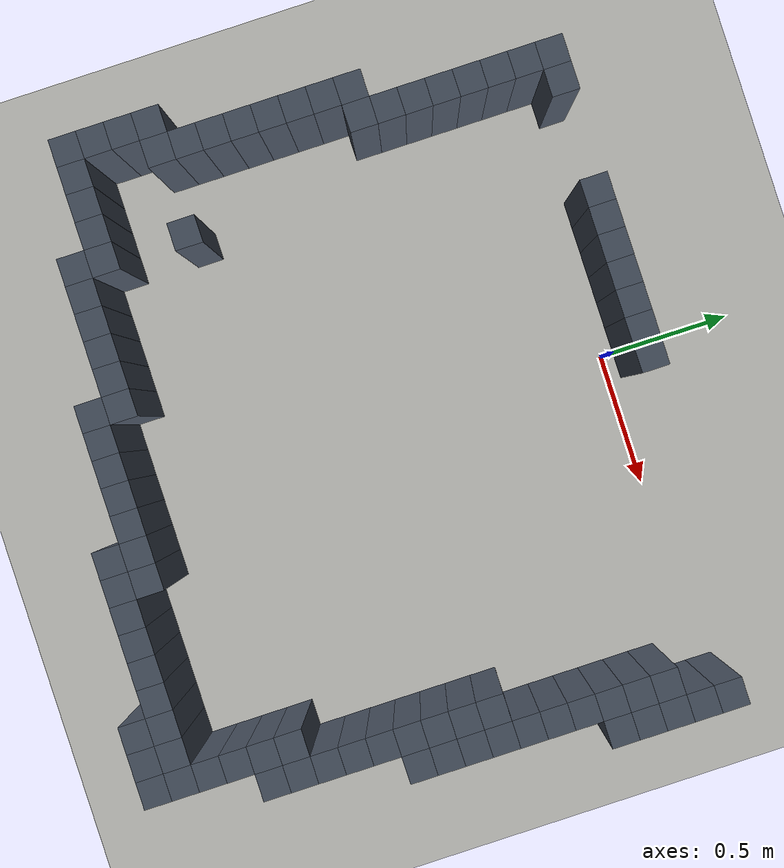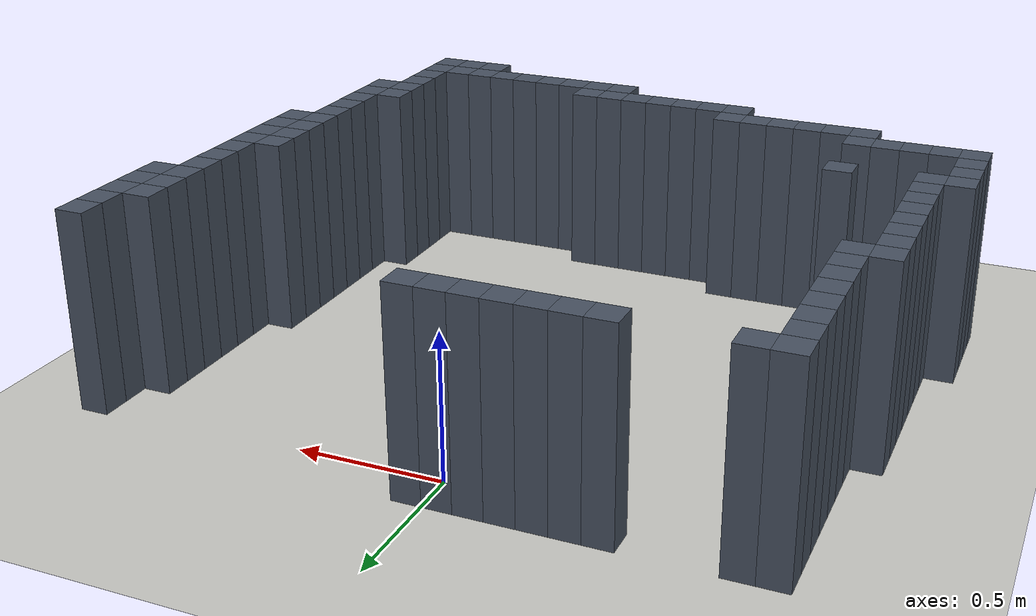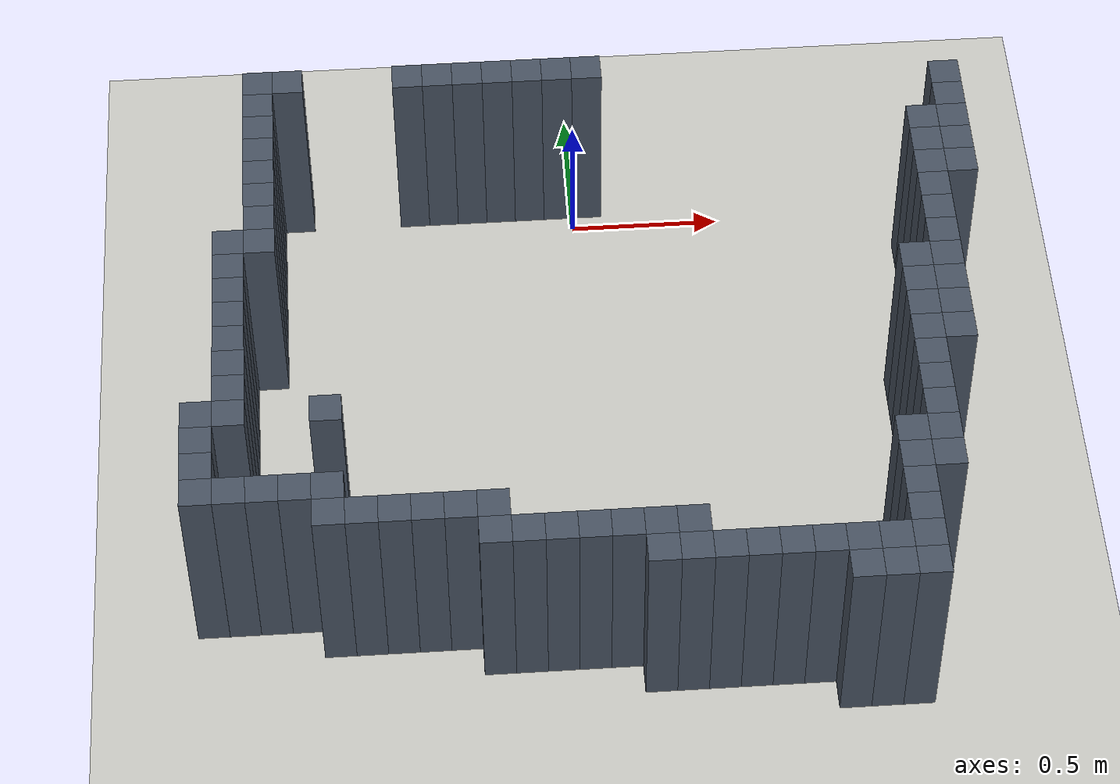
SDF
<sdf version="1.8">
 <world name="parking_passage">
  <model name="floor">
   <static>true</static>
   <link name="link">
    <collision name="collision">
     <geometry><plane><normal>0 0 1</normal><size>3.6 5.1</size></plane></geometry>
    </collision>
    <visual name="visual">
     <geometry><plane><normal>0 0 1</normal><size>3.6 5.1</size></plane></geometry>
     <material><ambient>0.78 0.78 0.76 1</ambient><diffuse>0.78 0.78 0.76 1</diffuse></material>
    </visual>
   </link>
  </model>
  <model name="map_walls">
   <static>true</static>
   <link name="wall_19_2">
    <pose>-1.050 0.100 0.350 0 0 0</pose>
    <visual name="visual">
     <geometry><box><size>0.1 0.1 0.70</size></box></geometry>
     <material><ambient>0.22 0.25 0.30 1</ambient><diffuse>0.28 0.32 0.38 1</diffuse></material>
    </visual>
    <collision name="collision"><geometry><box><size>0.1 0.1 0.70</size></box></geometry></collision>
   </link>
   <link name="wall_19_3">
    <pose>-0.950 0.100 0.350 0 0 0</pose>
    <visual name="visual">
     <geometry><box><size>0.1 0.1 0.70</size></box></geometry>
     <material><ambient>0.22 0.25 0.30 1</ambient><diffuse>0.28 0.32 0.38 1</diffuse></material>
    </visual>
    <collision name="collision"><geometry><box><size>0.1 0.1 0.70</size></box></geometry></collision>
   </link>
   <link name="wall_19_7">
    <pose>-0.550 0.100 0.350 0 0 0</pose>
    <visual name="visual">
     <geometry><box><size>0.1 0.1 0.70</size></box></geometry>
     <material><ambient>0.22 0.25 0.30 1</ambient><diffuse>0.28 0.32 0.38 1</diffuse></material>
    </visual>
    <collision name="collision"><geometry><box><size>0.1 0.1 0.70</size></box></geometry></collision>
   </link>
   <link name="wall_19_8">
    <pose>-0.450 0.100 0.350 0 0 0</pose>
    <visual name="visual">
     <geometry><box><size>0.1 0.1 0.70</size></box></geometry>
     <material><ambient>0.22 0.25 0.30 1</ambient><diffuse>0.28 0.32 0.38 1</diffuse></material>
    </visual>
    <collision name="collision"><geometry><box><size>0.1 0.1 0.70</size></box></geometry></collision>
   </link>
   <link name="wall_19_9">
    <pose>-0.350 0.100 0.350 0 0 0</pose>
    <visual name="visual">
     <geometry><box><size>0.1 0.1 0.70</size></box></geometry>
     <material><ambient>0.22 0.25 0.30 1</ambient><diffuse>0.28 0.32 0.38 1</diffuse></material>
    </visual>
    <collision name="collision"><geometry><box><size>0.1 0.1 0.70</size></box></geometry></collision>
   </link>
   <link name="wall_19_10">
    <pose>-0.250 0.100 0.350 0 0 0</pose>
    <visual name="visual">
     <geometry><box><size>0.1 0.1 0.70</size></box></geometry>
     <material><ambient>0.22 0.25 0.30 1</ambient><diffuse>0.28 0.32 0.38 1</diffuse></material>
    </visual>
    <collision name="collision"><geometry><box><size>0.1 0.1 0.70</size></box></geometry></collision>
   </link>
   <link name="wall_19_11">
    <pose>-0.150 0.100 0.350 0 0 0</pose>
    <visual name="visual">
     <geometry><box><size>0.1 0.1 0.70</size></box></geometry>
     <material><ambient>0.22 0.25 0.30 1</ambient><diffuse>0.28 0.32 0.38 1</diffuse></material>
    </visual>
    <collision name="collision"><geometry><box><size>0.1 0.1 0.70</size></box></geometry></collision>
   </link>
   <link name="wall_19_12">
    <pose>-0.050 0.100 0.350 0 0 0</pose>
    <visual name="visual">
     <geometry><box><size>0.1 0.1 0.70</size></box></geometry>
     <material><ambient>0.22 0.25 0.30 1</ambient><diffuse>0.28 0.32 0.38 1</diffuse></material>
    </visual>
    <collision name="collision"><geometry><box><size>0.1 0.1 0.70</size></box></geometry></collision>
   </link>
   <link name="wall_19_13">
    <pose>0.050 0.100 0.350 0 0 0</pose>
    <visual name="visual">
     <geometry><box><size>0.1 0.1 0.70</size></box></geometry>
     <material><ambient>0.22 0.25 0.30 1</ambient><diffuse>0.28 0.32 0.38 1</diffuse></material>
    </visual>
    <collision name="collision"><geometry><box><size>0.1 0.1 0.70</size></box></geometry></collision>
   </link>
   <link name="wall_20_2">
    <pose>-1.050 0.000 0.350 0 0 0</pose>
    <visual name="visual">
     <geometry><box><size>0.1 0.1 0.70</size></box></geometry>
     <material><ambient>0.22 0.25 0.30 1</ambient><diffuse>0.28 0.32 0.38 1</diffuse></material>
    </visual>
    <collision name="collision"><geometry><box><size>0.1 0.1 0.70</size></box></geometry></collision>
   </link>
   <link name="wall_20_25">
    <pose>1.250 0.000 0.350 0 0 0</pose>
    <visual name="visual">
     <geometry><box><size>0.1 0.1 0.70</size></box></geometry>
     <material><ambient>0.22 0.25 0.30 1</ambient><diffuse>0.28 0.32 0.38 1</diffuse></material>
    </visual>
    <collision name="collision"><geometry><box><size>0.1 0.1 0.70</size></box></geometry></collision>
   </link>
   <link name="wall_21_2">
    <pose>-1.050 -0.100 0.350 0 0 0</pose>
    <visual name="visual">
     <geometry><box><size>0.1 0.1 0.70</size></box></geometry>
     <material><ambient>0.22 0.25 0.30 1</ambient><diffuse>0.28 0.32 0.38 1</diffuse></material>
    </visual>
    <collision name="collision"><geometry><box><size>0.1 0.1 0.70</size></box></geometry></collision>
   </link>
   <link name="wall_21_25">
    <pose>1.250 -0.100 0.350 0 0 0</pose>
    <visual name="visual">
     <geometry><box><size>0.1 0.1 0.70</size></box></geometry>
     <material><ambient>0.22 0.25 0.30 1</ambient><diffuse>0.28 0.32 0.38 1</diffuse></material>
    </visual>
    <collision name="collision"><geometry><box><size>0.1 0.1 0.70</size></box></geometry></collision>
   </link>
   <link name="wall_22_2">
    <pose>-1.050 -0.200 0.350 0 0 0</pose>
    <visual name="visual">
     <geometry><box><size>0.1 0.1 0.70</size></box></geometry>
     <material><ambient>0.22 0.25 0.30 1</ambient><diffuse>0.28 0.32 0.38 1</diffuse></material>
    </visual>
    <collision name="collision"><geometry><box><size>0.1 0.1 0.70</size></box></geometry></collision>
   </link>
   <link name="wall_22_24">
    <pose>1.150 -0.200 0.350 0 0 0</pose>
    <visual name="visual">
     <geometry><box><size>0.1 0.1 0.70</size></box></geometry>
     <material><ambient>0.22 0.25 0.30 1</ambient><diffuse>0.28 0.32 0.38 1</diffuse></material>
    </visual>
    <collision name="collision"><geometry><box><size>0.1 0.1 0.70</size></box></geometry></collision>
   </link>
   <link name="wall_22_25">
    <pose>1.250 -0.200 0.350 0 0 0</pose>
    <visual name="visual">
     <geometry><box><size>0.1 0.1 0.70</size></box></geometry>
     <material><ambient>0.22 0.25 0.30 1</ambient><diffuse>0.28 0.32 0.38 1</diffuse></material>
    </visual>
    <collision name="collision"><geometry><box><size>0.1 0.1 0.70</size></box></geometry></collision>
   </link>
   <link name="wall_23_2">
    <pose>-1.050 -0.300 0.350 0 0 0</pose>
    <visual name="visual">
     <geometry><box><size>0.1 0.1 0.70</size></box></geometry>
     <material><ambient>0.22 0.25 0.30 1</ambient><diffuse>0.28 0.32 0.38 1</diffuse></material>
    </visual>
    <collision name="collision"><geometry><box><size>0.1 0.1 0.70</size></box></geometry></collision>
   </link>
   <link name="wall_23_24">
    <pose>1.150 -0.300 0.350 0 0 0</pose>
    <visual name="visual">
     <geometry><box><size>0.1 0.1 0.70</size></box></geometry>
     <material><ambient>0.22 0.25 0.30 1</ambient><diffuse>0.28 0.32 0.38 1</diffuse></material>
    </visual>
    <collision name="collision"><geometry><box><size>0.1 0.1 0.70</size></box></geometry></collision>
   </link>
   <link name="wall_23_25">
    <pose>1.250 -0.300 0.350 0 0 0</pose>
    <visual name="visual">
     <geometry><box><size>0.1 0.1 0.70</size></box></geometry>
     <material><ambient>0.22 0.25 0.30 1</ambient><diffuse>0.28 0.32 0.38 1</diffuse></material>
    </visual>
    <collision name="collision"><geometry><box><size>0.1 0.1 0.70</size></box></geometry></collision>
   </link>
   <link name="wall_24_2">
    <pose>-1.050 -0.400 0.350 0 0 0</pose>
    <visual name="visual">
     <geometry><box><size>0.1 0.1 0.70</size></box></geometry>
     <material><ambient>0.22 0.25 0.30 1</ambient><diffuse>0.28 0.32 0.38 1</diffuse></material>
    </visual>
    <collision name="collision"><geometry><box><size>0.1 0.1 0.70</size></box></geometry></collision>
   </link>
   <link name="wall_24_24">
    <pose>1.150 -0.400 0.350 0 0 0</pose>
    <visual name="visual">
     <geometry><box><size>0.1 0.1 0.70</size></box></geometry>
     <material><ambient>0.22 0.25 0.30 1</ambient><diffuse>0.28 0.32 0.38 1</diffuse></material>
    </visual>
    <collision name="collision"><geometry><box><size>0.1 0.1 0.70</size></box></geometry></collision>
   </link>
   <link name="wall_24_25">
    <pose>1.250 -0.400 0.350 0 0 0</pose>
    <visual name="visual">
     <geometry><box><size>0.1 0.1 0.70</size></box></geometry>
     <material><ambient>0.22 0.25 0.30 1</ambient><diffuse>0.28 0.32 0.38 1</diffuse></material>
    </visual>
    <collision name="collision"><geometry><box><size>0.1 0.1 0.70</size></box></geometry></collision>
   </link>
   <link name="wall_25_2">
    <pose>-1.050 -0.500 0.350 0 0 0</pose>
    <visual name="visual">
     <geometry><box><size>0.1 0.1 0.70</size></box></geometry>
     <material><ambient>0.22 0.25 0.30 1</ambient><diffuse>0.28 0.32 0.38 1</diffuse></material>
    </visual>
    <collision name="collision"><geometry><box><size>0.1 0.1 0.70</size></box></geometry></collision>
   </link>
   <link name="wall_25_24">
    <pose>1.150 -0.500 0.350 0 0 0</pose>
    <visual name="visual">
     <geometry><box><size>0.1 0.1 0.70</size></box></geometry>
     <material><ambient>0.22 0.25 0.30 1</ambient><diffuse>0.28 0.32 0.38 1</diffuse></material>
    </visual>
    <collision name="collision"><geometry><box><size>0.1 0.1 0.70</size></box></geometry></collision>
   </link>
   <link name="wall_26_1">
    <pose>-1.150 -0.600 0.350 0 0 0</pose>
    <visual name="visual">
     <geometry><box><size>0.1 0.1 0.70</size></box></geometry>
     <material><ambient>0.22 0.25 0.30 1</ambient><diffuse>0.28 0.32 0.38 1</diffuse></material>
    </visual>
    <collision name="collision"><geometry><box><size>0.1 0.1 0.70</size></box></geometry></collision>
   </link>
   <link name="wall_26_2">
    <pose>-1.050 -0.600 0.350 0 0 0</pose>
    <visual name="visual">
     <geometry><box><size>0.1 0.1 0.70</size></box></geometry>
     <material><ambient>0.22 0.25 0.30 1</ambient><diffuse>0.28 0.32 0.38 1</diffuse></material>
    </visual>
    <collision name="collision"><geometry><box><size>0.1 0.1 0.70</size></box></geometry></collision>
   </link>
   <link name="wall_26_24">
    <pose>1.150 -0.600 0.350 0 0 0</pose>
    <visual name="visual">
     <geometry><box><size>0.1 0.1 0.70</size></box></geometry>
     <material><ambient>0.22 0.25 0.30 1</ambient><diffuse>0.28 0.32 0.38 1</diffuse></material>
    </visual>
    <collision name="collision"><geometry><box><size>0.1 0.1 0.70</size></box></geometry></collision>
   </link>
   <link name="wall_27_1">
    <pose>-1.150 -0.700 0.350 0 0 0</pose>
    <visual name="visual">
     <geometry><box><size>0.1 0.1 0.70</size></box></geometry>
     <material><ambient>0.22 0.25 0.30 1</ambient><diffuse>0.28 0.32 0.38 1</diffuse></material>
    </visual>
    <collision name="collision"><geometry><box><size>0.1 0.1 0.70</size></box></geometry></collision>
   </link>
   <link name="wall_27_24">
    <pose>1.150 -0.700 0.350 0 0 0</pose>
    <visual name="visual">
     <geometry><box><size>0.1 0.1 0.70</size></box></geometry>
     <material><ambient>0.22 0.25 0.30 1</ambient><diffuse>0.28 0.32 0.38 1</diffuse></material>
    </visual>
    <collision name="collision"><geometry><box><size>0.1 0.1 0.70</size></box></geometry></collision>
   </link>
   <link name="wall_28_1">
    <pose>-1.150 -0.800 0.350 0 0 0</pose>
    <visual name="visual">
     <geometry><box><size>0.1 0.1 0.70</size></box></geometry>
     <material><ambient>0.22 0.25 0.30 1</ambient><diffuse>0.28 0.32 0.38 1</diffuse></material>
    </visual>
    <collision name="collision"><geometry><box><size>0.1 0.1 0.70</size></box></geometry></collision>
   </link>
   <link name="wall_28_23">
    <pose>1.050 -0.800 0.350 0 0 0</pose>
    <visual name="visual">
     <geometry><box><size>0.1 0.1 0.70</size></box></geometry>
     <material><ambient>0.22 0.25 0.30 1</ambient><diffuse>0.28 0.32 0.38 1</diffuse></material>
    </visual>
    <collision name="collision"><geometry><box><size>0.1 0.1 0.70</size></box></geometry></collision>
   </link>
   <link name="wall_28_24">
    <pose>1.150 -0.800 0.350 0 0 0</pose>
    <visual name="visual">
     <geometry><box><size>0.1 0.1 0.70</size></box></geometry>
     <material><ambient>0.22 0.25 0.30 1</ambient><diffuse>0.28 0.32 0.38 1</diffuse></material>
    </visual>
    <collision name="collision"><geometry><box><size>0.1 0.1 0.70</size></box></geometry></collision>
   </link>
   <link name="wall_29_1">
    <pose>-1.150 -0.900 0.350 0 0 0</pose>
    <visual name="visual">
     <geometry><box><size>0.1 0.1 0.70</size></box></geometry>
     <material><ambient>0.22 0.25 0.30 1</ambient><diffuse>0.28 0.32 0.38 1</diffuse></material>
    </visual>
    <collision name="collision"><geometry><box><size>0.1 0.1 0.70</size></box></geometry></collision>
   </link>
   <link name="wall_29_23">
    <pose>1.050 -0.900 0.350 0 0 0</pose>
    <visual name="visual">
     <geometry><box><size>0.1 0.1 0.70</size></box></geometry>
     <material><ambient>0.22 0.25 0.30 1</ambient><diffuse>0.28 0.32 0.38 1</diffuse></material>
    </visual>
    <collision name="collision"><geometry><box><size>0.1 0.1 0.70</size></box></geometry></collision>
   </link>
   <link name="wall_29_24">
    <pose>1.150 -0.900 0.350 0 0 0</pose>
    <visual name="visual">
     <geometry><box><size>0.1 0.1 0.70</size></box></geometry>
     <material><ambient>0.22 0.25 0.30 1</ambient><diffuse>0.28 0.32 0.38 1</diffuse></material>
    </visual>
    <collision name="collision"><geometry><box><size>0.1 0.1 0.70</size></box></geometry></collision>
   </link>
   <link name="wall_30_1">
    <pose>-1.150 -1.000 0.350 0 0 0</pose>
    <visual name="visual">
     <geometry><box><size>0.1 0.1 0.70</size></box></geometry>
     <material><ambient>0.22 0.25 0.30 1</ambient><diffuse>0.28 0.32 0.38 1</diffuse></material>
    </visual>
    <collision name="collision"><geometry><box><size>0.1 0.1 0.70</size></box></geometry></collision>
   </link>
   <link name="wall_30_23">
    <pose>1.050 -1.000 0.350 0 0 0</pose>
    <visual name="visual">
     <geometry><box><size>0.1 0.1 0.70</size></box></geometry>
     <material><ambient>0.22 0.25 0.30 1</ambient><diffuse>0.28 0.32 0.38 1</diffuse></material>
    </visual>
    <collision name="collision"><geometry><box><size>0.1 0.1 0.70</size></box></geometry></collision>
   </link>
   <link name="wall_30_24">
    <pose>1.150 -1.000 0.350 0 0 0</pose>
    <visual name="visual">
     <geometry><box><size>0.1 0.1 0.70</size></box></geometry>
     <material><ambient>0.22 0.25 0.30 1</ambient><diffuse>0.28 0.32 0.38 1</diffuse></material>
    </visual>
    <collision name="collision"><geometry><box><size>0.1 0.1 0.70</size></box></geometry></collision>
   </link>
   <link name="wall_31_1">
    <pose>-1.150 -1.100 0.350 0 0 0</pose>
    <visual name="visual">
     <geometry><box><size>0.1 0.1 0.70</size></box></geometry>
     <material><ambient>0.22 0.25 0.30 1</ambient><diffuse>0.28 0.32 0.38 1</diffuse></material>
    </visual>
    <collision name="collision"><geometry><box><size>0.1 0.1 0.70</size></box></geometry></collision>
   </link>
   <link name="wall_31_23">
    <pose>1.050 -1.100 0.350 0 0 0</pose>
    <visual name="visual">
     <geometry><box><size>0.1 0.1 0.70</size></box></geometry>
     <material><ambient>0.22 0.25 0.30 1</ambient><diffuse>0.28 0.32 0.38 1</diffuse></material>
    </visual>
    <collision name="collision"><geometry><box><size>0.1 0.1 0.70</size></box></geometry></collision>
   </link>
   <link name="wall_31_24">
    <pose>1.150 -1.100 0.350 0 0 0</pose>
    <visual name="visual">
     <geometry><box><size>0.1 0.1 0.70</size></box></geometry>
     <material><ambient>0.22 0.25 0.30 1</ambient><diffuse>0.28 0.32 0.38 1</diffuse></material>
    </visual>
    <collision name="collision"><geometry><box><size>0.1 0.1 0.70</size></box></geometry></collision>
   </link>
   <link name="wall_32_1">
    <pose>-1.150 -1.200 0.350 0 0 0</pose>
    <visual name="visual">
     <geometry><box><size>0.1 0.1 0.70</size></box></geometry>
     <material><ambient>0.22 0.25 0.30 1</ambient><diffuse>0.28 0.32 0.38 1</diffuse></material>
    </visual>
    <collision name="collision"><geometry><box><size>0.1 0.1 0.70</size></box></geometry></collision>
   </link>
   <link name="wall_32_23">
    <pose>1.050 -1.200 0.350 0 0 0</pose>
    <visual name="visual">
     <geometry><box><size>0.1 0.1 0.70</size></box></geometry>
     <material><ambient>0.22 0.25 0.30 1</ambient><diffuse>0.28 0.32 0.38 1</diffuse></material>
    </visual>
    <collision name="collision"><geometry><box><size>0.1 0.1 0.70</size></box></geometry></collision>
   </link>
   <link name="wall_33_0">
    <pose>-1.250 -1.300 0.350 0 0 0</pose>
    <visual name="visual">
     <geometry><box><size>0.1 0.1 0.70</size></box></geometry>
     <material><ambient>0.22 0.25 0.30 1</ambient><diffuse>0.28 0.32 0.38 1</diffuse></material>
    </visual>
    <collision name="collision"><geometry><box><size>0.1 0.1 0.70</size></box></geometry></collision>
   </link>
   <link name="wall_33_1">
    <pose>-1.150 -1.300 0.350 0 0 0</pose>
    <visual name="visual">
     <geometry><box><size>0.1 0.1 0.70</size></box></geometry>
     <material><ambient>0.22 0.25 0.30 1</ambient><diffuse>0.28 0.32 0.38 1</diffuse></material>
    </visual>
    <collision name="collision"><geometry><box><size>0.1 0.1 0.70</size></box></geometry></collision>
   </link>
   <link name="wall_33_4">
    <pose>-0.850 -1.300 0.350 0 0 0</pose>
    <visual name="visual">
     <geometry><box><size>0.1 0.1 0.70</size></box></geometry>
     <material><ambient>0.22 0.25 0.30 1</ambient><diffuse>0.28 0.32 0.38 1</diffuse></material>
    </visual>
    <collision name="collision"><geometry><box><size>0.1 0.1 0.70</size></box></geometry></collision>
   </link>
   <link name="wall_33_23">
    <pose>1.050 -1.300 0.350 0 0 0</pose>
    <visual name="visual">
     <geometry><box><size>0.1 0.1 0.70</size></box></geometry>
     <material><ambient>0.22 0.25 0.30 1</ambient><diffuse>0.28 0.32 0.38 1</diffuse></material>
    </visual>
    <collision name="collision"><geometry><box><size>0.1 0.1 0.70</size></box></geometry></collision>
   </link>
   <link name="wall_34_0">
    <pose>-1.250 -1.400 0.350 0 0 0</pose>
    <visual name="visual">
     <geometry><box><size>0.1 0.1 0.70</size></box></geometry>
     <material><ambient>0.22 0.25 0.30 1</ambient><diffuse>0.28 0.32 0.38 1</diffuse></material>
    </visual>
    <collision name="collision"><geometry><box><size>0.1 0.1 0.70</size></box></geometry></collision>
   </link>
   <link name="wall_34_23">
    <pose>1.050 -1.400 0.350 0 0 0</pose>
    <visual name="visual">
     <geometry><box><size>0.1 0.1 0.70</size></box></geometry>
     <material><ambient>0.22 0.25 0.30 1</ambient><diffuse>0.28 0.32 0.38 1</diffuse></material>
    </visual>
    <collision name="collision"><geometry><box><size>0.1 0.1 0.70</size></box></geometry></collision>
   </link>
   <link name="wall_35_0">
    <pose>-1.250 -1.500 0.350 0 0 0</pose>
    <visual name="visual">
     <geometry><box><size>0.1 0.1 0.70</size></box></geometry>
     <material><ambient>0.22 0.25 0.30 1</ambient><diffuse>0.28 0.32 0.38 1</diffuse></material>
    </visual>
    <collision name="collision"><geometry><box><size>0.1 0.1 0.70</size></box></geometry></collision>
   </link>
   <link name="wall_35_22">
    <pose>0.950 -1.500 0.350 0 0 0</pose>
    <visual name="visual">
     <geometry><box><size>0.1 0.1 0.70</size></box></geometry>
     <material><ambient>0.22 0.25 0.30 1</ambient><diffuse>0.28 0.32 0.38 1</diffuse></material>
    </visual>
    <collision name="collision"><geometry><box><size>0.1 0.1 0.70</size></box></geometry></collision>
   </link>
   <link name="wall_35_23">
    <pose>1.050 -1.500 0.350 0 0 0</pose>
    <visual name="visual">
     <geometry><box><size>0.1 0.1 0.70</size></box></geometry>
     <material><ambient>0.22 0.25 0.30 1</ambient><diffuse>0.28 0.32 0.38 1</diffuse></material>
    </visual>
    <collision name="collision"><geometry><box><size>0.1 0.1 0.70</size></box></geometry></collision>
   </link>
   <link name="wall_36_0">
    <pose>-1.250 -1.600 0.350 0 0 0</pose>
    <visual name="visual">
     <geometry><box><size>0.1 0.1 0.70</size></box></geometry>
     <material><ambient>0.22 0.25 0.30 1</ambient><diffuse>0.28 0.32 0.38 1</diffuse></material>
    </visual>
    <collision name="collision"><geometry><box><size>0.1 0.1 0.70</size></box></geometry></collision>
   </link>
   <link name="wall_36_1">
    <pose>-1.150 -1.600 0.350 0 0 0</pose>
    <visual name="visual">
     <geometry><box><size>0.1 0.1 0.70</size></box></geometry>
     <material><ambient>0.22 0.25 0.30 1</ambient><diffuse>0.28 0.32 0.38 1</diffuse></material>
    </visual>
    <collision name="collision"><geometry><box><size>0.1 0.1 0.70</size></box></geometry></collision>
   </link>
   <link name="wall_36_2">
    <pose>-1.050 -1.600 0.350 0 0 0</pose>
    <visual name="visual">
     <geometry><box><size>0.1 0.1 0.70</size></box></geometry>
     <material><ambient>0.22 0.25 0.30 1</ambient><diffuse>0.28 0.32 0.38 1</diffuse></material>
    </visual>
    <collision name="collision"><geometry><box><size>0.1 0.1 0.70</size></box></geometry></collision>
   </link>
   <link name="wall_36_3">
    <pose>-0.950 -1.600 0.350 0 0 0</pose>
    <visual name="visual">
     <geometry><box><size>0.1 0.1 0.70</size></box></geometry>
     <material><ambient>0.22 0.25 0.30 1</ambient><diffuse>0.28 0.32 0.38 1</diffuse></material>
    </visual>
    <collision name="collision"><geometry><box><size>0.1 0.1 0.70</size></box></geometry></collision>
   </link>
   <link name="wall_36_4">
    <pose>-0.850 -1.600 0.350 0 0 0</pose>
    <visual name="visual">
     <geometry><box><size>0.1 0.1 0.70</size></box></geometry>
     <material><ambient>0.22 0.25 0.30 1</ambient><diffuse>0.28 0.32 0.38 1</diffuse></material>
    </visual>
    <collision name="collision"><geometry><box><size>0.1 0.1 0.70</size></box></geometry></collision>
   </link>
   <link name="wall_36_22">
    <pose>0.950 -1.600 0.350 0 0 0</pose>
    <visual name="visual">
     <geometry><box><size>0.1 0.1 0.70</size></box></geometry>
     <material><ambient>0.22 0.25 0.30 1</ambient><diffuse>0.28 0.32 0.38 1</diffuse></material>
    </visual>
    <collision name="collision"><geometry><box><size>0.1 0.1 0.70</size></box></geometry></collision>
   </link>
   <link name="wall_36_23">
    <pose>1.050 -1.600 0.350 0 0 0</pose>
    <visual name="visual">
     <geometry><box><size>0.1 0.1 0.70</size></box></geometry>
     <material><ambient>0.22 0.25 0.30 1</ambient><diffuse>0.28 0.32 0.38 1</diffuse></material>
    </visual>
    <collision name="collision"><geometry><box><size>0.1 0.1 0.70</size></box></geometry></collision>
   </link>
   <link name="wall_37_4">
    <pose>-0.850 -1.700 0.350 0 0 0</pose>
    <visual name="visual">
     <geometry><box><size>0.1 0.1 0.70</size></box></geometry>
     <material><ambient>0.22 0.25 0.30 1</ambient><diffuse>0.28 0.32 0.38 1</diffuse></material>
    </visual>
    <collision name="collision"><geometry><box><size>0.1 0.1 0.70</size></box></geometry></collision>
   </link>
   <link name="wall_37_5">
    <pose>-0.750 -1.700 0.350 0 0 0</pose>
    <visual name="visual">
     <geometry><box><size>0.1 0.1 0.70</size></box></geometry>
     <material><ambient>0.22 0.25 0.30 1</ambient><diffuse>0.28 0.32 0.38 1</diffuse></material>
    </visual>
    <collision name="collision"><geometry><box><size>0.1 0.1 0.70</size></box></geometry></collision>
   </link>
   <link name="wall_37_6">
    <pose>-0.650 -1.700 0.350 0 0 0</pose>
    <visual name="visual">
     <geometry><box><size>0.1 0.1 0.70</size></box></geometry>
     <material><ambient>0.22 0.25 0.30 1</ambient><diffuse>0.28 0.32 0.38 1</diffuse></material>
    </visual>
    <collision name="collision"><geometry><box><size>0.1 0.1 0.70</size></box></geometry></collision>
   </link>
   <link name="wall_37_7">
    <pose>-0.550 -1.700 0.350 0 0 0</pose>
    <visual name="visual">
     <geometry><box><size>0.1 0.1 0.70</size></box></geometry>
     <material><ambient>0.22 0.25 0.30 1</ambient><diffuse>0.28 0.32 0.38 1</diffuse></material>
    </visual>
    <collision name="collision"><geometry><box><size>0.1 0.1 0.70</size></box></geometry></collision>
   </link>
   <link name="wall_37_8">
    <pose>-0.450 -1.700 0.350 0 0 0</pose>
    <visual name="visual">
     <geometry><box><size>0.1 0.1 0.70</size></box></geometry>
     <material><ambient>0.22 0.25 0.30 1</ambient><diffuse>0.28 0.32 0.38 1</diffuse></material>
    </visual>
    <collision name="collision"><geometry><box><size>0.1 0.1 0.70</size></box></geometry></collision>
   </link>
   <link name="wall_37_9">
    <pose>-0.350 -1.700 0.350 0 0 0</pose>
    <visual name="visual">
     <geometry><box><size>0.1 0.1 0.70</size></box></geometry>
     <material><ambient>0.22 0.25 0.30 1</ambient><diffuse>0.28 0.32 0.38 1</diffuse></material>
    </visual>
    <collision name="collision"><geometry><box><size>0.1 0.1 0.70</size></box></geometry></collision>
   </link>
   <link name="wall_37_22">
    <pose>0.950 -1.700 0.350 0 0 0</pose>
    <visual name="visual">
     <geometry><box><size>0.1 0.1 0.70</size></box></geometry>
     <material><ambient>0.22 0.25 0.30 1</ambient><diffuse>0.28 0.32 0.38 1</diffuse></material>
    </visual>
    <collision name="collision"><geometry><box><size>0.1 0.1 0.70</size></box></geometry></collision>
   </link>
   <link name="wall_38_9">
    <pose>-0.350 -1.800 0.350 0 0 0</pose>
    <visual name="visual">
     <geometry><box><size>0.1 0.1 0.70</size></box></geometry>
     <material><ambient>0.22 0.25 0.30 1</ambient><diffuse>0.28 0.32 0.38 1</diffuse></material>
    </visual>
    <collision name="collision"><geometry><box><size>0.1 0.1 0.70</size></box></geometry></collision>
   </link>
   <link name="wall_38_10">
    <pose>-0.250 -1.800 0.350 0 0 0</pose>
    <visual name="visual">
     <geometry><box><size>0.1 0.1 0.70</size></box></geometry>
     <material><ambient>0.22 0.25 0.30 1</ambient><diffuse>0.28 0.32 0.38 1</diffuse></material>
    </visual>
    <collision name="collision"><geometry><box><size>0.1 0.1 0.70</size></box></geometry></collision>
   </link>
   <link name="wall_38_11">
    <pose>-0.150 -1.800 0.350 0 0 0</pose>
    <visual name="visual">
     <geometry><box><size>0.1 0.1 0.70</size></box></geometry>
     <material><ambient>0.22 0.25 0.30 1</ambient><diffuse>0.28 0.32 0.38 1</diffuse></material>
    </visual>
    <collision name="collision"><geometry><box><size>0.1 0.1 0.70</size></box></geometry></collision>
   </link>
   <link name="wall_38_12">
    <pose>-0.050 -1.800 0.350 0 0 0</pose>
    <visual name="visual">
     <geometry><box><size>0.1 0.1 0.70</size></box></geometry>
     <material><ambient>0.22 0.25 0.30 1</ambient><diffuse>0.28 0.32 0.38 1</diffuse></material>
    </visual>
    <collision name="collision"><geometry><box><size>0.1 0.1 0.70</size></box></geometry></collision>
   </link>
   <link name="wall_38_13">
    <pose>0.050 -1.800 0.350 0 0 0</pose>
    <visual name="visual">
     <geometry><box><size>0.1 0.1 0.70</size></box></geometry>
     <material><ambient>0.22 0.25 0.30 1</ambient><diffuse>0.28 0.32 0.38 1</diffuse></material>
    </visual>
    <collision name="collision"><geometry><box><size>0.1 0.1 0.70</size></box></geometry></collision>
   </link>
   <link name="wall_38_14">
    <pose>0.150 -1.800 0.350 0 0 0</pose>
    <visual name="visual">
     <geometry><box><size>0.1 0.1 0.70</size></box></geometry>
     <material><ambient>0.22 0.25 0.30 1</ambient><diffuse>0.28 0.32 0.38 1</diffuse></material>
    </visual>
    <collision name="collision"><geometry><box><size>0.1 0.1 0.70</size></box></geometry></collision>
   </link>
   <link name="wall_38_15">
    <pose>0.250 -1.800 0.350 0 0 0</pose>
    <visual name="visual">
     <geometry><box><size>0.1 0.1 0.70</size></box></geometry>
     <material><ambient>0.22 0.25 0.30 1</ambient><diffuse>0.28 0.32 0.38 1</diffuse></material>
    </visual>
    <collision name="collision"><geometry><box><size>0.1 0.1 0.70</size></box></geometry></collision>
   </link>
   <link name="wall_38_22">
    <pose>0.950 -1.800 0.350 0 0 0</pose>
    <visual name="visual">
     <geometry><box><size>0.1 0.1 0.70</size></box></geometry>
     <material><ambient>0.22 0.25 0.30 1</ambient><diffuse>0.28 0.32 0.38 1</diffuse></material>
    </visual>
    <collision name="collision"><geometry><box><size>0.1 0.1 0.70</size></box></geometry></collision>
   </link>
   <link name="wall_39_14">
    <pose>0.150 -1.900 0.350 0 0 0</pose>
    <visual name="visual">
     <geometry><box><size>0.1 0.1 0.70</size></box></geometry>
     <material><ambient>0.22 0.25 0.30 1</ambient><diffuse>0.28 0.32 0.38 1</diffuse></material>
    </visual>
    <collision name="collision"><geometry><box><size>0.1 0.1 0.70</size></box></geometry></collision>
   </link>
   <link name="wall_39_15">
    <pose>0.250 -1.900 0.350 0 0 0</pose>
    <visual name="visual">
     <geometry><box><size>0.1 0.1 0.70</size></box></geometry>
     <material><ambient>0.22 0.25 0.30 1</ambient><diffuse>0.28 0.32 0.38 1</diffuse></material>
    </visual>
    <collision name="collision"><geometry><box><size>0.1 0.1 0.70</size></box></geometry></collision>
   </link>
   <link name="wall_39_16">
    <pose>0.350 -1.900 0.350 0 0 0</pose>
    <visual name="visual">
     <geometry><box><size>0.1 0.1 0.70</size></box></geometry>
     <material><ambient>0.22 0.25 0.30 1</ambient><diffuse>0.28 0.32 0.38 1</diffuse></material>
    </visual>
    <collision name="collision"><geometry><box><size>0.1 0.1 0.70</size></box></geometry></collision>
   </link>
   <link name="wall_39_17">
    <pose>0.450 -1.900 0.350 0 0 0</pose>
    <visual name="visual">
     <geometry><box><size>0.1 0.1 0.70</size></box></geometry>
     <material><ambient>0.22 0.25 0.30 1</ambient><diffuse>0.28 0.32 0.38 1</diffuse></material>
    </visual>
    <collision name="collision"><geometry><box><size>0.1 0.1 0.70</size></box></geometry></collision>
   </link>
   <link name="wall_39_18">
    <pose>0.550 -1.900 0.350 0 0 0</pose>
    <visual name="visual">
     <geometry><box><size>0.1 0.1 0.70</size></box></geometry>
     <material><ambient>0.22 0.25 0.30 1</ambient><diffuse>0.28 0.32 0.38 1</diffuse></material>
    </visual>
    <collision name="collision"><geometry><box><size>0.1 0.1 0.70</size></box></geometry></collision>
   </link>
   <link name="wall_39_19">
    <pose>0.650 -1.900 0.350 0 0 0</pose>
    <visual name="visual">
     <geometry><box><size>0.1 0.1 0.70</size></box></geometry>
     <material><ambient>0.22 0.25 0.30 1</ambient><diffuse>0.28 0.32 0.38 1</diffuse></material>
    </visual>
    <collision name="collision"><geometry><box><size>0.1 0.1 0.70</size></box></geometry></collision>
   </link>
   <link name="wall_39_20">
    <pose>0.750 -1.900 0.350 0 0 0</pose>
    <visual name="visual">
     <geometry><box><size>0.1 0.1 0.70</size></box></geometry>
     <material><ambient>0.22 0.25 0.30 1</ambient><diffuse>0.28 0.32 0.38 1</diffuse></material>
    </visual>
    <collision name="collision"><geometry><box><size>0.1 0.1 0.70</size></box></geometry></collision>
   </link>
   <link name="wall_39_21">
    <pose>0.850 -1.900 0.350 0 0 0</pose>
    <visual name="visual">
     <geometry><box><size>0.1 0.1 0.70</size></box></geometry>
     <material><ambient>0.22 0.25 0.30 1</ambient><diffuse>0.28 0.32 0.38 1</diffuse></material>
    </visual>
    <collision name="collision"><geometry><box><size>0.1 0.1 0.70</size></box></geometry></collision>
   </link>
   <link name="wall_39_22">
    <pose>0.950 -1.900 0.350 0 0 0</pose>
    <visual name="visual">
     <geometry><box><size>0.1 0.1 0.70</size></box></geometry>
     <material><ambient>0.22 0.25 0.30 1</ambient><diffuse>0.28 0.32 0.38 1</diffuse></material>
    </visual>
    <collision name="collision"><geometry><box><size>0.1 0.1 0.70</size></box></geometry></collision>
   </link>
   <link name="wall_40_20">
    <pose>0.750 -2.000 0.350 0 0 0</pose>
    <visual name="visual">
     <geometry><box><size>0.1 0.1 0.70</size></box></geometry>
     <material><ambient>0.22 0.25 0.30 1</ambient><diffuse>0.28 0.32 0.38 1</diffuse></material>
    </visual>
    <collision name="collision"><geometry><box><size>0.1 0.1 0.70</size></box></geometry></collision>
   </link>
   <link name="wall_40_21">
    <pose>0.850 -2.000 0.350 0 0 0</pose>
    <visual name="visual">
     <geometry><box><size>0.1 0.1 0.70</size></box></geometry>
     <material><ambient>0.22 0.25 0.30 1</ambient><diffuse>0.28 0.32 0.38 1</diffuse></material>
    </visual>
    <collision name="collision"><geometry><box><size>0.1 0.1 0.70</size></box></geometry></collision>
   </link>
   <link name="wall_40_22">
    <pose>0.950 -2.000 0.350 0 0 0</pose>
    <visual name="visual">
     <geometry><box><size>0.1 0.1 0.70</size></box></geometry>
     <material><ambient>0.22 0.25 0.30 1</ambient><diffuse>0.28 0.32 0.38 1</diffuse></material>
    </visual>
    <collision name="collision"><geometry><box><size>0.1 0.1 0.70</size></box></geometry></collision>
   </link>
  </model>
 </world>
</sdf>
